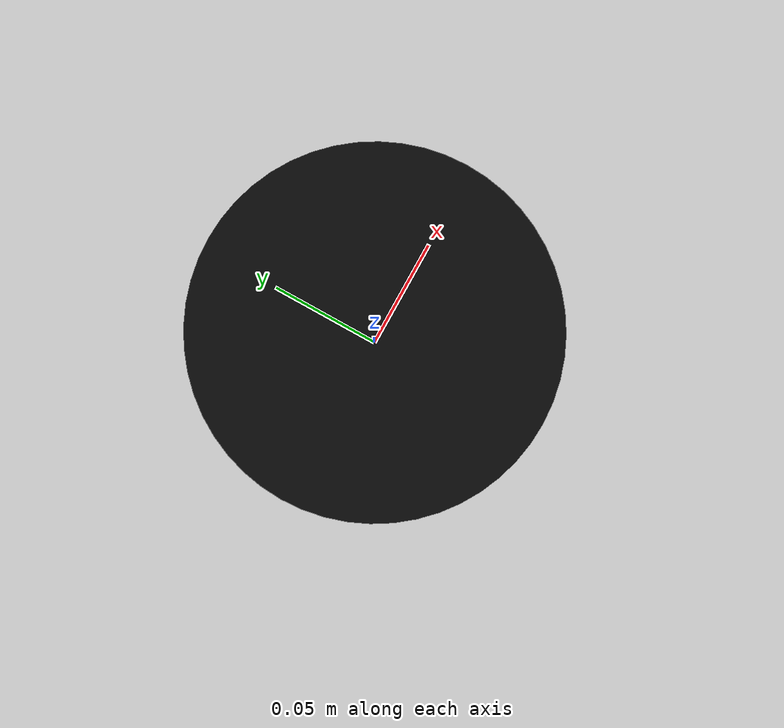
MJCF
<mujoco model="base">
  <default>
    <default class="visual">
      <geom group="2" type="mesh" contype="0" conaffinity="0"/>
    </default>
    <default class="collision">
      <geom group="3" type="mesh"/>
    </default>
  </default>
  <asset>
    <material name="material_base_0" specular="0.20000000000000004" shininess="1.0" rgba="0.27843137 0.27843137 0.27843137 1.0"/>
    <material name="material_base_1" specular="0.20000000000000004" shininess="1.0" rgba="0.03137255 0.03137255 0.03137255 1.0"/>
    <mesh file="base_0.obj"/>
    <mesh file="base_1.obj"/>
  </asset>
  <worldbody>
    <body name="base">
      <geom mesh="base_0" material="material_base_1" class="visual"/>
      <geom mesh="base_1" material="material_base_0" class="visual"/>
      <geom mesh="base_0" class="collision"/>
      <geom mesh="base_1" class="collision"/>
    </body>
  </worldbody>
</mujoco>
